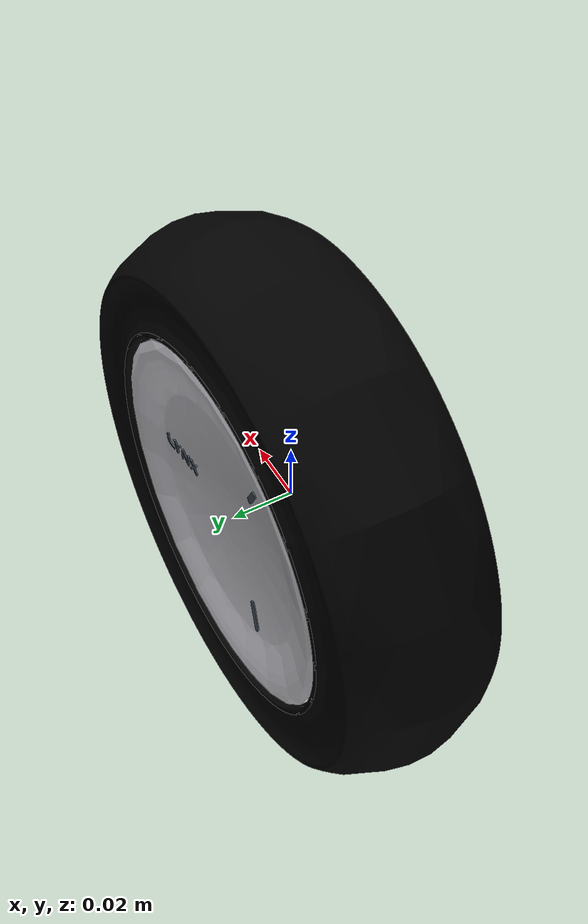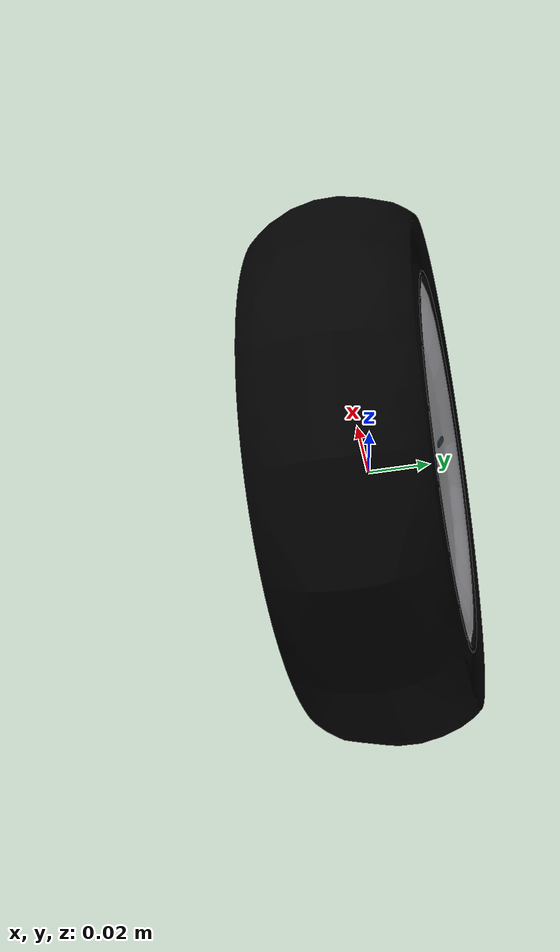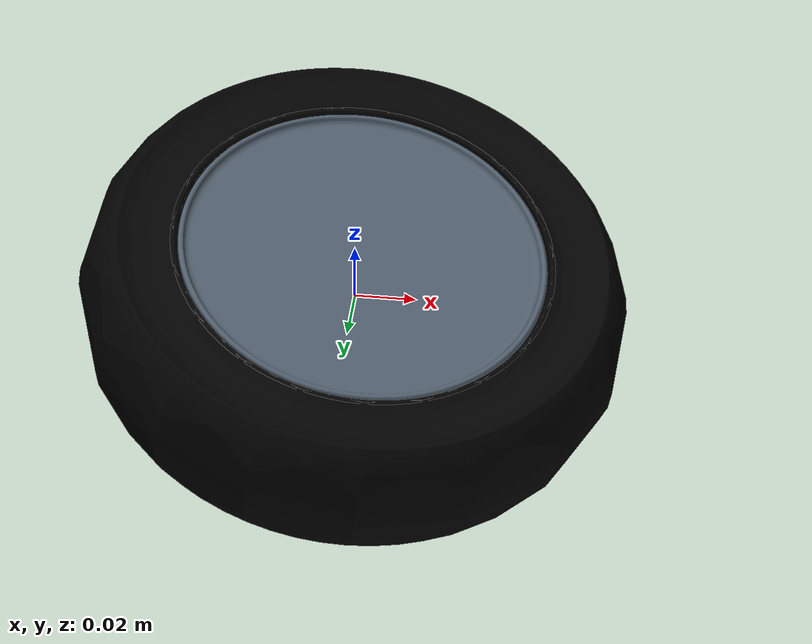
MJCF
<mujoco model="fl_wheel">
  <default>
    <default class="visual">
      <geom group="2" type="mesh" contype="0" conaffinity="0"/>
    </default>
    <default class="collision">
      <geom group="3" type="mesh"/>
    </default>
  </default>
  <asset>
    <material name="Material-7011油漆" specular="0.5" shininess="0.25" rgba="0.309804 0.364706 0.419608 1.000000"/>
    <material name="Material-7011油漆.001" specular="0.5" shininess="0.25" rgba="0.309804 0.364706 0.419608 1.000000"/>
    <material name="Material-7011油漆.002" specular="0.5" shininess="0.25" rgba="0.309804 0.364706 0.419608 1.000000"/>
    <material name="Material-7011油漆.003" specular="0.5" shininess="0.25" rgba="0.309804 0.364706 0.419608 1.000000"/>
    <material name="Material-7011油漆.004" specular="0.5" shininess="0.25" rgba="0.309804 0.364706 0.419608 1.000000"/>
    <material name="Material-7011油漆.005" specular="0.5" shininess="0.25" rgba="0.309804 0.364706 0.419608 1.000000"/>
    <material name="Material-7011油漆.006" specular="0.5" shininess="0.25" rgba="0.309804 0.364706 0.419608 1.000000"/>
    <material name="Material-塑胶" specular="0.5" shininess="0.25" rgba="0.000000 0.000000 0.000000 1.000000"/>
    <material name="Material-塑胶.001" specular="0.5" shininess="0.25" rgba="0.000000 0.000000 0.000000 1.000000"/>
    <material name="Material-塑胶__3_" specular="0.5" shininess="0.25" rgba="0.854902 0.850980 0.878431 1.000000"/>
    <mesh file="fl_wheel_0.obj"/>
    <mesh file="fl_wheel_1.obj"/>
    <mesh file="fl_wheel_2.obj"/>
    <mesh file="fl_wheel_3.obj"/>
    <mesh file="fl_wheel_4.obj"/>
    <mesh file="fl_wheel_5.obj"/>
    <mesh file="fl_wheel_6.obj"/>
    <mesh file="fl_wheel_7.obj"/>
    <mesh file="fl_wheel_8.obj"/>
    <mesh file="fl_wheel_9.obj"/>
  </asset>
  <worldbody>
    <body name="fl_wheel">
      <geom mesh="fl_wheel_0" material="Material-7011油漆.006" class="visual"/>
      <geom mesh="fl_wheel_1" material="Material-塑胶.001" class="visual"/>
      <geom mesh="fl_wheel_2" material="Material-塑胶" class="visual"/>
      <geom mesh="fl_wheel_3" material="Material-塑胶__3_" class="visual"/>
      <geom mesh="fl_wheel_4" material="Material-7011油漆.005" class="visual"/>
      <geom mesh="fl_wheel_5" material="Material-7011油漆.004" class="visual"/>
      <geom mesh="fl_wheel_6" material="Material-7011油漆.003" class="visual"/>
      <geom mesh="fl_wheel_7" material="Material-7011油漆.002" class="visual"/>
      <geom mesh="fl_wheel_8" material="Material-7011油漆.001" class="visual"/>
      <geom mesh="fl_wheel_9" material="Material-7011油漆" class="visual"/>
      <geom mesh="fl_wheel_0" class="collision"/>
      <geom mesh="fl_wheel_1" class="collision"/>
      <geom mesh="fl_wheel_2" class="collision"/>
      <geom mesh="fl_wheel_3" class="collision"/>
      <geom mesh="fl_wheel_4" class="collision"/>
      <geom mesh="fl_wheel_5" class="collision"/>
      <geom mesh="fl_wheel_6" class="collision"/>
      <geom mesh="fl_wheel_7" class="collision"/>
      <geom mesh="fl_wheel_8" class="collision"/>
      <geom mesh="fl_wheel_9" class="collision"/>
    </body>
  </worldbody>
</mujoco>
